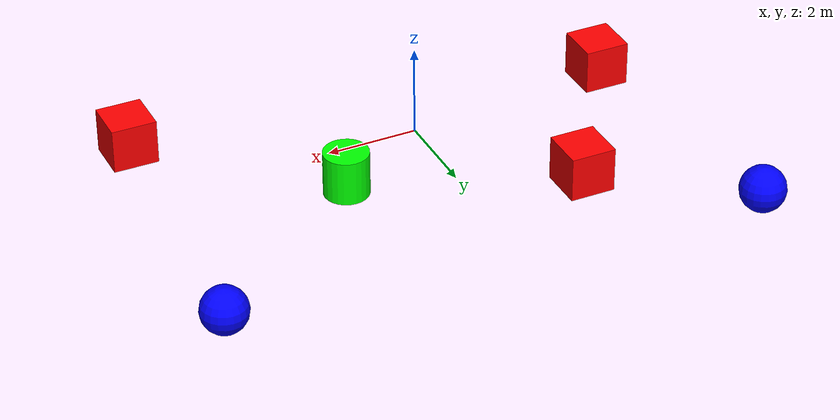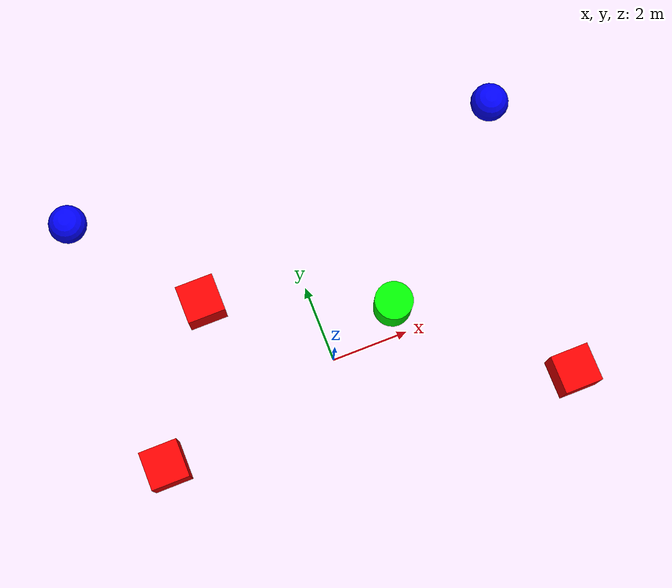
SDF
<?xml version='1.0'?>
<sdf version='1.7'>
  <model name='a1_model'>
    <link name='link_0'>
      <inertial>
        <mass>1</mass>
        <inertia>
          <ixx>0.145833</ixx>
          <ixy>0</ixy>
          <ixz>0</ixz>
          <iyy>0.145833</iyy>
          <iyz>0</iyz>
          <izz>0.125</izz>
        </inertia>
        <pose>0 0 0 0 -0 0</pose>
      </inertial>
      <pose>1.95827 0.800088 0 0 -0 0</pose>
      <self_collide>0</self_collide>
      <enable_wind>0</enable_wind>
      <kinematic>0</kinematic>
      <gravity>1</gravity>
      <visual name='visual'>
        <pose>0 0 0 0 -0 0</pose>
        <geometry>
          <cylinder>
            <radius>0.5</radius>
            <length>1</length>
          </cylinder>
        </geometry>
        <material>
          <lighting>1</lighting>
          <script>
            <uri>file://media/materials/scripts/gazebo.material</uri>
            <name>Gazebo/Grey</name>
          </script>
          <shader type='pixel'>
            <normal_map>__default__</normal_map>
          </shader>
          <ambient>0 1 0 0</ambient>
          <diffuse>0.7 0.7 0.7 1</diffuse>
          <specular>0.01 0.01 0.01 1</specular>
          <emissive>0 0 0 1</emissive>
        </material>
        <transparency>0</transparency>
        <cast_shadows>1</cast_shadows>
      </visual>
      <collision name='collision'>
        <laser_retro>0</laser_retro>
        <max_contacts>10</max_contacts>
        <pose>0 0 0 0 -0 0</pose>
        <geometry>
          <cylinder>
            <radius>0.5</radius>
            <length>1</length>
          </cylinder>
        </geometry>
        <surface>
          <friction>
            <ode>
              <mu>1</mu>
              <mu2>1</mu2>
              <fdir1>0 0 0</fdir1>
              <slip1>0</slip1>
              <slip2>0</slip2>
            </ode>
            <torsional>
              <coefficient>1</coefficient>
              <patch_radius>0</patch_radius>
              <surface_radius>0</surface_radius>
              <use_patch_radius>1</use_patch_radius>
              <ode>
                <slip>0</slip>
              </ode>
            </torsional>
          </friction>
          <bounce>
            <restitution_coefficient>0</restitution_coefficient>
            <threshold>1e+06</threshold>
          </bounce>
          <contact>
            <collide_without_contact>0</collide_without_contact>
            <collide_without_contact_bitmask>1</collide_without_contact_bitmask>
            <collide_bitmask>1</collide_bitmask>
            <ode>
              <soft_cfm>0</soft_cfm>
              <soft_erp>0.2</soft_erp>
              <kp>1e+13</kp>
              <kd>1</kd>
              <max_vel>0.01</max_vel>
              <min_depth>0</min_depth>
            </ode>
            <bullet>
              <split_impulse>1</split_impulse>
              <split_impulse_penetration_threshold>-0.01</split_impulse_penetration_threshold>
              <soft_cfm>0</soft_cfm>
              <soft_erp>0.2</soft_erp>
              <kp>1e+13</kp>
              <kd>1</kd>
            </bullet>
          </contact>
        </surface>
      </collision>
    </link>
    <link name='link_1'>
      <inertial>
        <mass>1</mass>
        <inertia>
          <ixx>0.166667</ixx>
          <ixy>0</ixy>
          <ixz>0</ixz>
          <iyy>0.166667</iyy>
          <iyz>0</iyz>
          <izz>0.166667</izz>
        </inertia>
        <pose>0 0 0 0 -0 0</pose>
      </inertial>
      <pose>-4.92246 -0.960552 0 0 -0 0</pose>
      <self_collide>0</self_collide>
      <enable_wind>0</enable_wind>
      <kinematic>0</kinematic>
      <gravity>1</gravity>
      <visual name='visual'>
        <pose>0 0 0 0 -0 0</pose>
        <geometry>
          <box>
            <size>1 1 1</size>
          </box>
        </geometry>
        <material>
          <lighting>1</lighting>
          <script>
            <uri>file://media/materials/scripts/gazebo.material</uri>
            <name>Gazebo/Grey</name>
          </script>
          <shader type='pixel'>
            <normal_map>__default__</normal_map>
          </shader>
          <ambient>1 0 0 0</ambient>
          <diffuse>0.7 0.7 0.7 1</diffuse>
          <specular>0.01 0.01 0.01 1</specular>
          <emissive>0 0 0 1</emissive>
        </material>
        <transparency>0</transparency>
        <cast_shadows>1</cast_shadows>
      </visual>
      <collision name='collision'>
        <laser_retro>0</laser_retro>
        <max_contacts>10</max_contacts>
        <pose>0 0 0 0 -0 0</pose>
        <geometry>
          <box>
            <size>1 1 1</size>
          </box>
        </geometry>
        <surface>
          <friction>
            <ode>
              <mu>1</mu>
              <mu2>1</mu2>
              <fdir1>0 0 0</fdir1>
              <slip1>0</slip1>
              <slip2>0</slip2>
            </ode>
            <torsional>
              <coefficient>1</coefficient>
              <patch_radius>0</patch_radius>
              <surface_radius>0</surface_radius>
              <use_patch_radius>1</use_patch_radius>
              <ode>
                <slip>0</slip>
              </ode>
            </torsional>
          </friction>
          <bounce>
            <restitution_coefficient>0</restitution_coefficient>
            <threshold>1e+06</threshold>
          </bounce>
          <contact>
            <collide_without_contact>0</collide_without_contact>
            <collide_without_contact_bitmask>1</collide_without_contact_bitmask>
            <collide_bitmask>1</collide_bitmask>
            <ode>
              <soft_cfm>0</soft_cfm>
              <soft_erp>0.2</soft_erp>
              <kp>1e+13</kp>
              <kd>1</kd>
              <max_vel>0.01</max_vel>
              <min_depth>0</min_depth>
            </ode>
            <bullet>
              <split_impulse>1</split_impulse>
              <split_impulse_penetration_threshold>-0.01</split_impulse_penetration_threshold>
              <soft_cfm>0</soft_cfm>
              <soft_erp>0.2</soft_erp>
              <kp>1e+13</kp>
              <kd>1</kd>
            </bullet>
          </contact>
        </surface>
      </collision>
    </link>
    <link name='link_2'>
      <inertial>
        <mass>1</mass>
        <inertia>
          <ixx>0.166667</ixx>
          <ixy>0</ixy>
          <ixz>0</ixz>
          <iyy>0.166667</iyy>
          <iyz>0</iyz>
          <izz>0.166667</izz>
        </inertia>
        <pose>0 0 0 0 -0 0</pose>
      </inertial>
      <pose>-2.62236 2.65381 0 0 -0 0</pose>
      <gravity>1</gravity>
      <self_collide>0</self_collide>
      <kinematic>0</kinematic>
      <enable_wind>0</enable_wind>
      <visual name='visual'>
        <pose>0 0 0 0 -0 0</pose>
        <geometry>
          <box>
            <size>1 1 1</size>
          </box>
        </geometry>
        <material>
          <lighting>1</lighting>
          <script>
            <uri>file://media/materials/scripts/gazebo.material</uri>
            <name>Gazebo/Grey</name>
          </script>
          <shader type='pixel'>
            <normal_map>__default__</normal_map>
          </shader>
          <ambient>1 0 0 0</ambient>
          <diffuse>0.7 0.7 0.7 1</diffuse>
          <specular>0.01 0.01 0.01 1</specular>
          <emissive>0 0 0 1</emissive>
        </material>
        <transparency>0</transparency>
        <cast_shadows>1</cast_shadows>
      </visual>
      <collision name='collision'>
        <laser_retro>0</laser_retro>
        <max_contacts>10</max_contacts>
        <pose>0 0 0 0 -0 0</pose>
        <geometry>
          <box>
            <size>1 1 1</size>
          </box>
        </geometry>
        <surface>
          <friction>
            <ode>
              <mu>1</mu>
              <mu2>1</mu2>
              <fdir1>0 0 0</fdir1>
              <slip1>0</slip1>
              <slip2>0</slip2>
            </ode>
            <torsional>
              <coefficient>1</coefficient>
              <patch_radius>0</patch_radius>
              <surface_radius>0</surface_radius>
              <use_patch_radius>1</use_patch_radius>
              <ode>
                <slip>0</slip>
              </ode>
            </torsional>
          </friction>
          <bounce>
            <restitution_coefficient>0</restitution_coefficient>
            <threshold>1e+06</threshold>
          </bounce>
          <contact>
            <collide_without_contact>0</collide_without_contact>
            <collide_without_contact_bitmask>1</collide_without_contact_bitmask>
            <collide_bitmask>1</collide_bitmask>
            <ode>
              <soft_cfm>0</soft_cfm>
              <soft_erp>0.2</soft_erp>
              <kp>1e+13</kp>
              <kd>1</kd>
              <max_vel>0.01</max_vel>
              <min_depth>0</min_depth>
            </ode>
            <bullet>
              <split_impulse>1</split_impulse>
              <split_impulse_penetration_threshold>-0.01</split_impulse_penetration_threshold>
              <soft_cfm>0</soft_cfm>
              <soft_erp>0.2</soft_erp>
              <kp>1e+13</kp>
              <kd>1</kd>
            </bullet>
          </contact>
        </surface>
      </collision>
    </link>
    <link name='link_2_0'>
      <inertial>
        <mass>1</mass>
        <inertia>
          <ixx>0.1</ixx>
          <ixy>0</ixy>
          <ixz>0</ixz>
          <iyy>0.1</iyy>
          <iyz>0</iyz>
          <izz>0.1</izz>
        </inertia>
        <pose>0 0 0 0 -0 0</pose>
      </inertial>
      <pose>-5.12112 5.72151 0.5 0 -0 0</pose>
      <gravity>1</gravity>
      <self_collide>0</self_collide>
      <kinematic>0</kinematic>
      <enable_wind>0</enable_wind>
      <visual name='visual'>
        <pose>0 0 0 0 -0 0</pose>
        <geometry>
          <sphere>
            <radius>0.5</radius>
          </sphere>
        </geometry>
        <material>
          <lighting>1</lighting>
          <script>
            <uri>file://media/materials/scripts/gazebo.material</uri>
            <name>Gazebo/Grey</name>
          </script>
          <shader type='pixel'>
            <normal_map>__default__</normal_map>
          </shader>
          <ambient>0 0 1 0</ambient>
          <diffuse>0.7 0.7 0.7 1</diffuse>
          <specular>0.01 0.01 0.01 1</specular>
          <emissive>0 0 0 1</emissive>
        </material>
        <transparency>0</transparency>
        <cast_shadows>1</cast_shadows>
      </visual>
      <collision name='collision'>
        <laser_retro>0</laser_retro>
        <max_contacts>10</max_contacts>
        <pose>0 0 0 0 -0 0</pose>
        <geometry>
          <sphere>
            <radius>0.5</radius>
          </sphere>
        </geometry>
        <surface>
          <friction>
            <ode>
              <mu>1</mu>
              <mu2>1</mu2>
              <fdir1>0 0 0</fdir1>
              <slip1>0</slip1>
              <slip2>0</slip2>
            </ode>
            <torsional>
              <coefficient>1</coefficient>
              <patch_radius>0</patch_radius>
              <surface_radius>0</surface_radius>
              <use_patch_radius>1</use_patch_radius>
              <ode>
                <slip>0</slip>
              </ode>
            </torsional>
          </friction>
          <bounce>
            <restitution_coefficient>0</restitution_coefficient>
            <threshold>1e+06</threshold>
          </bounce>
          <contact>
            <collide_without_contact>0</collide_without_contact>
            <collide_without_contact_bitmask>1</collide_without_contact_bitmask>
            <collide_bitmask>1</collide_bitmask>
            <ode>
              <soft_cfm>0</soft_cfm>
              <soft_erp>0.2</soft_erp>
              <kp>1e+13</kp>
              <kd>1</kd>
              <max_vel>0.01</max_vel>
              <min_depth>0</min_depth>
            </ode>
            <bullet>
              <split_impulse>1</split_impulse>
              <split_impulse_penetration_threshold>-0.01</split_impulse_penetration_threshold>
              <soft_cfm>0</soft_cfm>
              <soft_erp>0.2</soft_erp>
              <kp>1e+13</kp>
              <kd>1</kd>
            </bullet>
          </contact>
        </surface>
      </collision>
    </link>
    <link name='link_3'>
      <inertial>
        <mass>1</mass>
        <inertia>
          <ixx>0.166667</ixx>
          <ixy>0</ixy>
          <ixz>0</ixz>
          <iyy>0.166667</iyy>
          <iyz>0</iyz>
          <izz>0.166667</izz>
        </inertia>
        <pose>0 0 0 0 -0 0</pose>
      </inertial>
      <pose>5.58654 -2.49336 0 0 -0 0</pose>
      <self_collide>0</self_collide>
      <enable_wind>0</enable_wind>
      <kinematic>0</kinematic>
      <gravity>1</gravity>
      <visual name='visual'>
        <pose>0 0 0 0 -0 0</pose>
        <geometry>
          <box>
            <size>1 1 1</size>
          </box>
        </geometry>
        <material>
          <lighting>1</lighting>
          <script>
            <uri>file://media/materials/scripts/gazebo.material</uri>
            <name>Gazebo/Grey</name>
          </script>
          <shader type='pixel'>
            <normal_map>__default__</normal_map>
          </shader>
          <ambient>1 0 0 0</ambient>
          <diffuse>0.7 0.7 0.7 1</diffuse>
          <specular>0.01 0.01 0.01 1</specular>
          <emissive>0 0 0 1</emissive>
        </material>
        <transparency>0</transparency>
        <cast_shadows>1</cast_shadows>
      </visual>
      <collision name='collision'>
        <laser_retro>0</laser_retro>
        <max_contacts>10</max_contacts>
        <pose>0 0 0 0 -0 0</pose>
        <geometry>
          <box>
            <size>1 1 1</size>
          </box>
        </geometry>
        <surface>
          <friction>
            <ode>
              <mu>1</mu>
              <mu2>1</mu2>
              <fdir1>0 0 0</fdir1>
              <slip1>0</slip1>
              <slip2>0</slip2>
            </ode>
            <torsional>
              <coefficient>1</coefficient>
              <patch_radius>0</patch_radius>
              <surface_radius>0</surface_radius>
              <use_patch_radius>1</use_patch_radius>
              <ode>
                <slip>0</slip>
              </ode>
            </torsional>
          </friction>
          <bounce>
            <restitution_coefficient>0</restitution_coefficient>
            <threshold>1e+06</threshold>
          </bounce>
          <contact>
            <collide_without_contact>0</collide_without_contact>
            <collide_without_contact_bitmask>1</collide_without_contact_bitmask>
            <collide_bitmask>1</collide_bitmask>
            <ode>
              <soft_cfm>0</soft_cfm>
              <soft_erp>0.2</soft_erp>
              <kp>1e+13</kp>
              <kd>1</kd>
              <max_vel>0.01</max_vel>
              <min_depth>0</min_depth>
            </ode>
            <bullet>
              <split_impulse>1</split_impulse>
              <split_impulse_penetration_threshold>-0.01</split_impulse_penetration_threshold>
              <soft_cfm>0</soft_cfm>
              <soft_erp>0.2</soft_erp>
              <kp>1e+13</kp>
              <kd>1</kd>
            </bullet>
          </contact>
        </surface>
      </collision>
    </link>
    <link name='link_3_0'>
      <inertial>
        <mass>1</mass>
        <inertia>
          <ixx>0.1</ixx>
          <ixy>0</ixy>
          <ixz>0</ixz>
          <iyy>0.1</iyy>
          <iyz>0</iyz>
          <izz>0.1</izz>
        </inertia>
        <pose>0 0 0 0 -0 0</pose>
      </inertial>
      <pose>6.28747 4.80136 0.5 0 -0 0</pose>
      <gravity>1</gravity>
      <self_collide>0</self_collide>
      <kinematic>0</kinematic>
      <enable_wind>0</enable_wind>
      <visual name='visual'>
        <pose>0 0 0 0 -0 0</pose>
        <geometry>
          <sphere>
            <radius>0.5</radius>
          </sphere>
        </geometry>
        <material>
          <lighting>1</lighting>
          <script>
            <uri>file://media/materials/scripts/gazebo.material</uri>
            <name>Gazebo/Grey</name>
          </script>
          <shader type='pixel'>
            <normal_map>__default__</normal_map>
          </shader>
          <ambient>0 0 1 0</ambient>
          <diffuse>0.7 0.7 0.7 1</diffuse>
          <specular>0.01 0.01 0.01 1</specular>
          <emissive>0 0 0 1</emissive>
        </material>
        <transparency>0</transparency>
        <cast_shadows>1</cast_shadows>
      </visual>
      <collision name='collision'>
        <laser_retro>0</laser_retro>
        <max_contacts>10</max_contacts>
        <pose>0 0 0 0 -0 0</pose>
        <geometry>
          <sphere>
            <radius>0.5</radius>
          </sphere>
        </geometry>
        <surface>
          <friction>
            <ode>
              <mu>1</mu>
              <mu2>1</mu2>
              <fdir1>0 0 0</fdir1>
              <slip1>0</slip1>
              <slip2>0</slip2>
            </ode>
            <torsional>
              <coefficient>1</coefficient>
              <patch_radius>0</patch_radius>
              <surface_radius>0</surface_radius>
              <use_patch_radius>1</use_patch_radius>
              <ode>
                <slip>0</slip>
              </ode>
            </torsional>
          </friction>
          <bounce>
            <restitution_coefficient>0</restitution_coefficient>
            <threshold>1e+06</threshold>
          </bounce>
          <contact>
            <collide_without_contact>0</collide_without_contact>
            <collide_without_contact_bitmask>1</collide_without_contact_bitmask>
            <collide_bitmask>1</collide_bitmask>
            <ode>
              <soft_cfm>0</soft_cfm>
              <soft_erp>0.2</soft_erp>
              <kp>1e+13</kp>
              <kd>1</kd>
              <max_vel>0.01</max_vel>
              <min_depth>0</min_depth>
            </ode>
            <bullet>
              <split_impulse>1</split_impulse>
              <split_impulse_penetration_threshold>-0.01</split_impulse_penetration_threshold>
              <soft_cfm>0</soft_cfm>
              <soft_erp>0.2</soft_erp>
              <kp>1e+13</kp>
              <kd>1</kd>
            </bullet>
          </contact>
        </surface>
      </collision>
    </link>
    <static>0</static>
    <allow_auto_disable>1</allow_auto_disable>
  </model>
</sdf>
